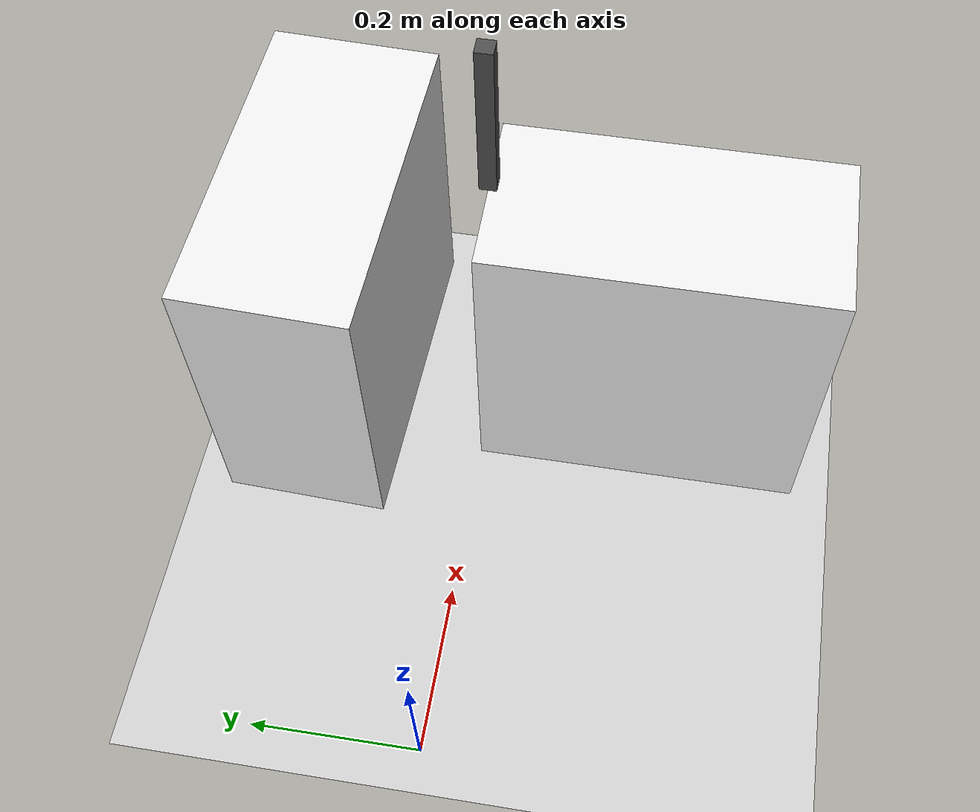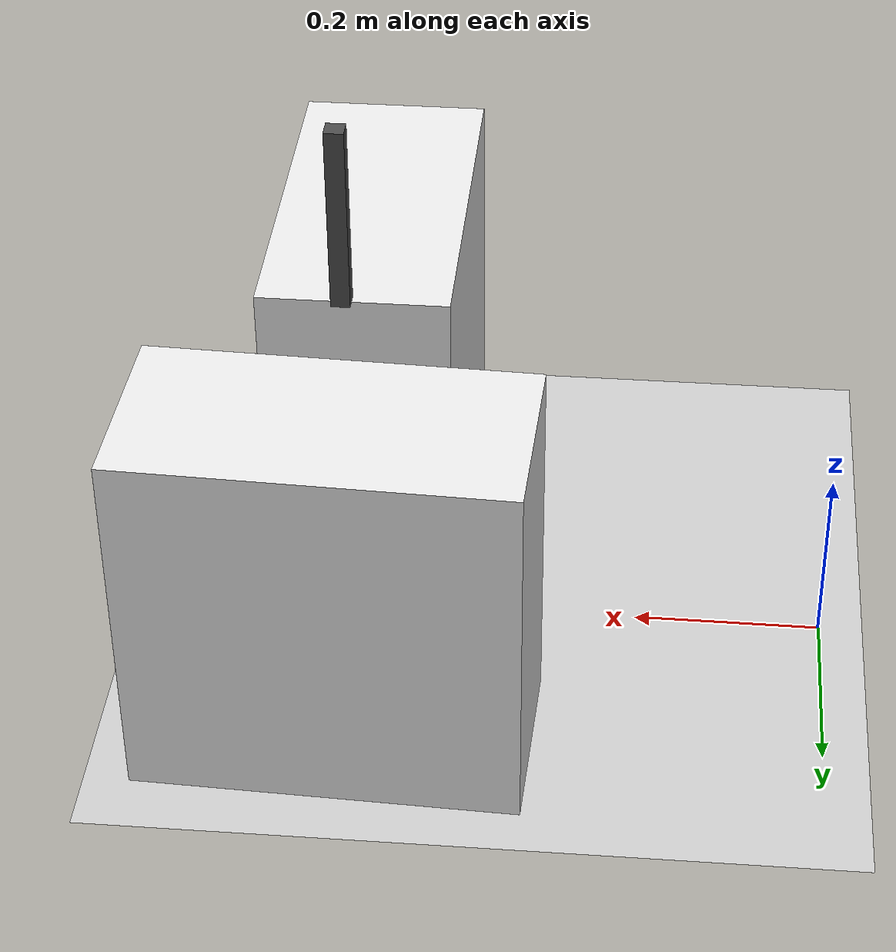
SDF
<sdf version="1.7">
 <world name="panda_pick_and_place">
  <light name="sun" type="directional">
   <pose>0 0 10 0 -0 0</pose>
   <diffuse>0.8 0.8 0.8 1</diffuse>
   <specular>0.2 0.2 0.2 1</specular>
   <attenuation>
    <range>1000</range>
    <constant>0.9</constant>
    <linear>0.01</linear>
    <quadratic>0.001</quadratic>
   </attenuation>
   <direction>-0.5 0.1 -0.9</direction>
   <spot><inner_angle>0</inner_angle><outer_angle>0</outer_angle><falloff>0</falloff></spot>
  </light>
  <model name="ground_plane">
   <static>1</static>
   <link name="link">
    <collision name="collision">
     <geometry><plane><normal>0 0 1</normal><size>100 100</size></plane></geometry>
     <surface>
      <contact><collide_bitmask>65535</collide_bitmask></contact>
      <friction><ode><mu>100</mu><mu2>50</mu2></ode></friction>
     </surface>
    </collision>
    <visual name="visual">
     <cast_shadows>0</cast_shadows>
     <geometry><plane><normal>0 0 1</normal><size>100 100</size></plane></geometry>
     <material>
      <script><uri>file://media/materials/scripts/gazebo.material</uri><name>Gazebo/Grey</name></script>
     </material>
    </visual>
   </link>
  </model>
  <model name="platform">
   <link name="link">
    <inertial>
     <mass>10</mass>
     <inertia>
      <ixx>0.166667</ixx>
      <ixy>0</ixy>
      <ixz>0</ixz>
      <iyy>0.166667</iyy>
      <iyz>0</iyz>
      <izz>0.166667</izz>
     </inertia>
    </inertial>
    <visual name="visual">
     <geometry><box><size>0.2 0.4 0.4</size></box></geometry>
     <material>
      <script><uri>file://media/materials/scripts/gazebo.material</uri><name>Gazebo/White</name></script>
      <shader type="pixel"/>
     </material>
    </visual>
    <collision name="collision">
     <geometry><box><size>0.2 0.4 0.4</size></box></geometry>
     <surface>
      <friction>
       <ode><mu>1</mu><mu2>1</mu2><fdir1>0 0 0</fdir1><slip1>0</slip1><slip2>0</slip2></ode>
       <torsional>
        <coefficient>1</coefficient>
        <patch_radius>0</patch_radius>
        <surface_radius>0</surface_radius>
        <use_patch_radius>1</use_patch_radius>
        <ode><slip>0</slip></ode>
       </torsional>
      </friction>
      <bounce><restitution_coefficient>0</restitution_coefficient><threshold>1e+06</threshold></bounce>
      <contact>
       <collide_without_contact>0</collide_without_contact>
       <collide_without_contact_bitmask>1</collide_without_contact_bitmask>
       <collide_bitmask>1</collide_bitmask>
       <ode>
        <soft_cfm>0</soft_cfm>
        <soft_erp>0.2</soft_erp>
        <kp>1e+13</kp>
        <kd>1</kd>
        <max_vel>0.01</max_vel>
        <min_depth>0</min_depth>
       </ode>
       <bullet>
        <split_impulse>1</split_impulse>
        <split_impulse_penetration_threshold>-0.01</split_impulse_penetration_threshold>
        <soft_cfm>0</soft_cfm>
        <soft_erp>0.2</soft_erp>
        <kp>1e+13</kp>
        <kd>1</kd>
       </bullet>
      </contact>
     </surface>
    </collision>
   </link>
   <static>1</static>
   <pose>0.5 -0.2 0.2 0 -0 0</pose>
  </model>
  <model name="cube">
   <link name="link">
    <inertial>
     <pose>0.01 0.01 0.1 0 -0 0</pose>
     <mass>0.20736</mass>
     <inertia>
      <ixx>0.00012442</ixx>
      <ixy>0</ixy>
      <ixz>0</ixz>
      <iyy>0.00012442</iyy>
      <iyz>0</iyz>
      <izz>0.00012442</izz>
     </inertia>
    </inertial>
    <visual name="visual">
     <pose>0.01 0.01 0.1 0 -0 0</pose>
     <geometry><box><size>0.02 0.02 0.2</size></box></geometry>
     <material>
      <script><uri>file://media/materials/scripts/gazebo.material</uri><name>Gazebo/DarkGrey</name></script>
      <shader type="pixel"/>
     </material>
    </visual>
    <collision name="collision">
     <pose>0.01 0.01 0.1 0 -0 0</pose>
     <geometry><box><size>0.02 0.02 0.2</size></box></geometry>
     <surface>
      <friction><ode><mu>0.6</mu><mu2>0.6</mu2></ode></friction>
      <contact>
       <collide_bitmask>1</collide_bitmask>
       <ode><kp>1e+06</kp><kd>1e+06</kd><max_vel>1</max_vel><min_depth>0.002</min_depth></ode>
       <bullet>
        <kp>1e+06</kp>
        <kd>1e+06</kd>
        <split_impulse>1</split_impulse>
        <split_impulse_penetration_threshold>-0.01</split_impulse_penetration_threshold>
       </bullet>
      </contact>
     </surface>
    </collision>
   </link>
   <pose>0.5 -0.01 0.4 0 -0 0</pose>
  </model>
  <gravity>0 0 -9.8</gravity>
  <magnetic_field>6e-06 2.3e-05 -4.2e-05</magnetic_field>
  <atmosphere type="adiabatic"/>
  <physics type="ode">
   <max_step_size>0.001</max_step_size>
   <real_time_factor>1</real_time_factor>
   <real_time_update_rate>1000</real_time_update_rate>
  </physics>
  <scene><ambient>0.4 0.4 0.4 1</ambient><background>0.7 0.7 0.7 1</background><shadows>1</shadows></scene>
  <spherical_coordinates>
   <surface_model>EARTH_WGS84</surface_model>
   <latitude_deg>0</latitude_deg>
   <longitude_deg>0</longitude_deg>
   <elevation>0</elevation>
   <heading_deg>0</heading_deg>
  </spherical_coordinates>
  <model name="platform_clone">
   <link name="link">
    <inertial>
     <mass>10</mass>
     <inertia>
      <ixx>0.166667</ixx>
      <ixy>0</ixy>
      <ixz>0</ixz>
      <iyy>0.166667</iyy>
      <iyz>0</iyz>
      <izz>0.166667</izz>
     </inertia>
    </inertial>
    <visual name="visual">
     <geometry><box><size>0.2 0.4 0.4</size></box></geometry>
     <material>
      <script><uri>file://media/materials/scripts/gazebo.material</uri><name>Gazebo/White</name></script>
      <shader type="pixel"/>
     </material>
    </visual>
    <collision name="collision">
     <geometry><box><size>0.2 0.4 0.4</size></box></geometry>
     <surface>
      <friction>
       <ode><mu>1</mu><mu2>1</mu2><fdir1>0 0 0</fdir1><slip1>0</slip1><slip2>0</slip2></ode>
       <torsional>
        <coefficient>1</coefficient>
        <patch_radius>0</patch_radius>
        <surface_radius>0</surface_radius>
        <use_patch_radius>1</use_patch_radius>
        <ode><slip>0</slip></ode>
       </torsional>
      </friction>
      <bounce><restitution_coefficient>0</restitution_coefficient><threshold>1e+06</threshold></bounce>
      <contact>
       <collide_without_contact>0</collide_without_contact>
       <collide_without_contact_bitmask>1</collide_without_contact_bitmask>
       <collide_bitmask>1</collide_bitmask>
       <ode>
        <soft_cfm>0</soft_cfm>
        <soft_erp>0.2</soft_erp>
        <kp>1e+13</kp>
        <kd>1</kd>
        <max_vel>0.01</max_vel>
        <min_depth>0</min_depth>
       </ode>
       <bullet>
        <split_impulse>1</split_impulse>
        <split_impulse_penetration_threshold>-0.01</split_impulse_penetration_threshold>
        <soft_cfm>0</soft_cfm>
        <soft_erp>0.2</soft_erp>
        <kp>1e+13</kp>
        <kd>1</kd>
       </bullet>
      </contact>
     </surface>
    </collision>
   </link>
   <static>1</static>
   <pose>0.5 0.2 0.2 0 0 -1.60889</pose>
  </model>
 </world>
</sdf>
